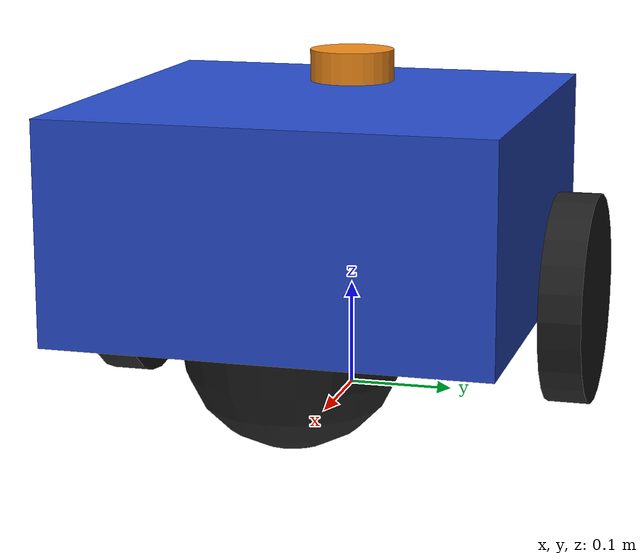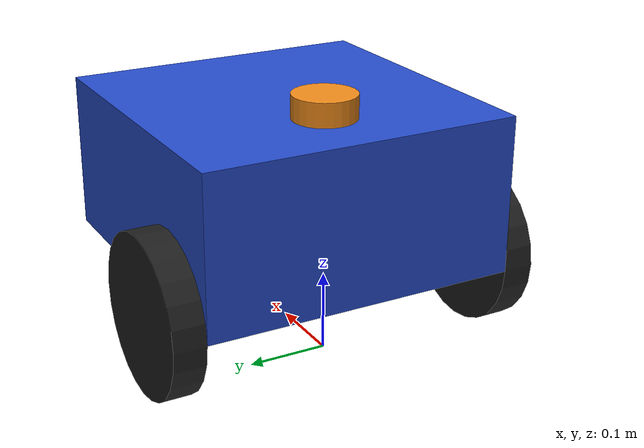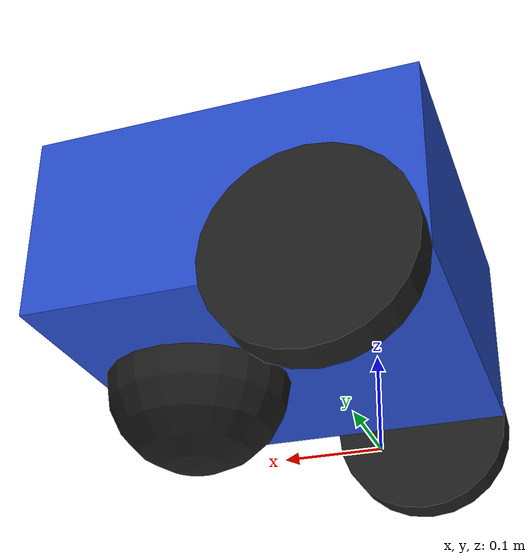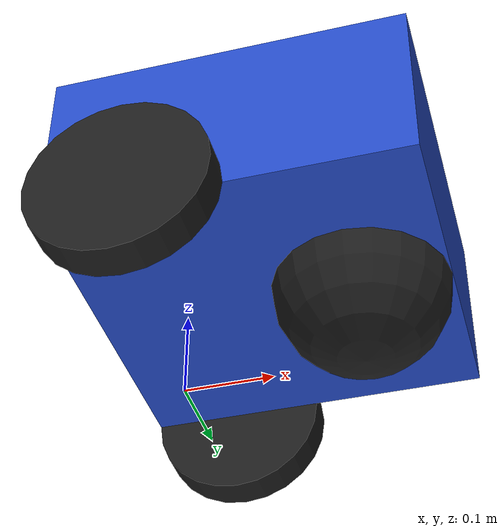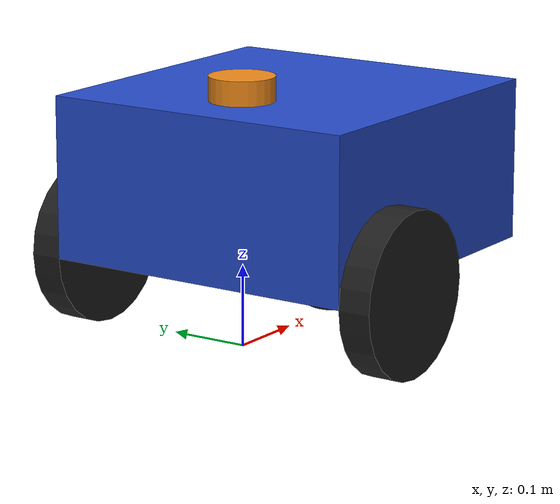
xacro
<?xml version="1.0"?>
<robot name="my_agv" xmlns:xacro="http://www.ros.org/wiki/xacro">

    <xacro:include filename="$(find my_agv)/my_agv_description/urdf/materials.xacro"/>
    <xacro:include filename="$(find my_agv)/my_agv_description/urdf/robot_core.xacro"/>

</robot>

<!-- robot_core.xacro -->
<robot xmlns:xacro="http://www.ros.org/wiki/xacro">

    <!-- BASE_LINK -->
    <link name="base_footprint">
       <origin xyz="0.0 0.0 0.0"/>
    </link>

    <joint name="base_joint" type="fixed">
        <origin xyz="0.0 0.0 0.1"/>
        <parent link="base_footprint"/>
        <child link="base_link"/>
    </joint>

    <link name="base_link">
       <origin xyz="0.0 0.0 0.0"/>
    </link>

    <!-- CHASSIS_LINK -->

    <joint name="chassis_joint" type="fixed">
        <parent link="base_link"/>
        <child link="chassis"/>
        <origin xyz="-0.1 0.0 0.0"/>
    </joint>

    <link name="chassis">
        <inertial>
            <origin xyz="0.2 0.0 0.1" rpy="0.0 0.0 0.0"/>
            <mass value="10.0"/>
            <inertia ixx="0.1" ixy="0.0" ixz="0.0" iyy="0.1" iyz="0.0" izz="0.1"/>
        </inertial>
        <visual>
            <origin xyz="0.2 0.0 0.1" rpy="0.0 0.0 0.0"/>
            <geometry>
                <box size="0.4 0.4 0.2"/>
            </geometry>
            <material name="blue"/>
        </visual>
        <collision>
            <origin xyz="0.2 0.0 0.1" rpy="0.0 0.0 0.0"/>
            <geometry>
                <box size="0.4 0.4 0.2"/>
            </geometry>
        </collision>
    </link>

    <gazebo reference="chassis">
        <material>Gazebo/Blue</material>
    </gazebo>

    <!-- LEFT WHEEL LINK -->
    <joint name="left_wheel_joint" type="continuous">
        <origin xyz="0 0.22 0" rpy="-${pi/2} 0.0 0.0"/>
        <parent link="base_link"/>
        <child link="left_wheel"/>
        <axis xyz="0.0 0.0 1.0"/>
    </joint>

    <link name="left_wheel">
        <visual>
            <origin xyz="0.0 0.0 0.0" rpy="0.0 0.0 0.0"/>
            <geometry>
                <cylinder radius="0.1" length="0.04"/>
            </geometry>
            <material name="black"/>
        </visual>
        <collision>
            <origin xyz="0.0 0.0 0.0" rpy="0.0 0.0 0.0"/>
            <geometry>
                <cylinder radius="0.1" length="0.04"/>
            </geometry>
        </collision>
        <inertial>
            <mass value="0.5"/>
            <inertia ixx="0.1" ixy="0.0" ixz="0.0" iyy="0.1" iyz="0.0" izz="0.1"/>
        </inertial>
    </link>

    <gazebo reference="left_wheel">
        <material>Gazebo/FlatBlack</material>
    </gazebo>

    <!-- RIGHT WHEEL LINK -->
    <joint name="right_wheel_joint" type="continuous">
        <origin xyz="0 -0.22 0" rpy="${pi/2} 0.0 0.0"/>
        <parent link="base_link"/>
        <child link="right_wheel"/>
        <axis xyz="0.0 0.0 -1.0"/>
    </joint>

    <link name="right_wheel">
        <visual>
            <origin xyz="0.0 0.0 0.0" rpy="0.0 0.0 0.0"/>
            <geometry>
                <cylinder radius="0.1" length="0.04"/>
            </geometry>
            <material name="black"/>
        </visual>
        <collision>
            <origin xyz="0.0 0.0 0.0" rpy="0.0 0.0 0.0"/>
            <geometry>
                <cylinder radius="0.1" length="0.04"/>
            </geometry>
        </collision>
        <inertial>
            <mass value="0.5"/>
            <inertia ixx="0.1" ixy="0.0" ixz="0.0" iyy="0.1" iyz="0.0" izz="0.1"/>
        </inertial>
    </link>

    <gazebo reference="right_wheel">
        <material>Gazebo/FlatBlack</material>
    </gazebo>

    <!-- CASTER_WHEEL -->
    <joint name="caster_wheel_joint" type="fixed">
        <parent link="chassis"/>
        <child link="caster_wheel"/>
        <origin xyz="0.3 0.0 0.0"/>         <!--dich 0.3 theo truc x ke tu tam cua chassis-->
    </joint>

    <link name="caster_wheel">
        <visual>
            <geometry>
                <sphere radius="0.1"/>
            </geometry>
            <material name="black"/>
        </visual>
        <collision>
            <geometry>
                <sphere radius="0.1"/>
            </geometry>
        </collision>
        <inertial>
            <mass value="0.2"/>
            <inertia ixx="0.1" ixy="0.0" ixz="0.0" iyy="0.1" iyz="0.0" izz="0.1"/>
        </inertial>

    </link>

    <gazebo reference="caster_wheel">
        <material>Gazebo/FlatBlack</material>
        <mu1 value="0.001"/>
        <mu2 value="0.001"/>
    </gazebo>

    <!-- lidar -->
    <joint name="joint_scan" type="fixed">
        <origin xyz="0.0 0.0 0.215" rpy="0.0 0.0 ${pi}"/>
        <parent link="base_link"/>
        <child link="base_scan"/>
    </joint>

    <link name="base_scan">
        <visual>
            <geometry>
                <cylinder radius="0.04" length="0.03"/>
                <material name="orange"/>
            </geometry>
        </visual>
        <collision>
            <geometry>
                <cylinder radius="0.04" length="0.03"/>
            </geometry>
        </collision>
        <inertial>
            <mass value="0.114"/>
            <inertia ixx="0.01" ixy="0.0" ixz="0.0" iyy="0.01" iyz="0.0" izz="0.01"/>
        </inertial>
    </link>

    <gazebo reference="base_scan">
        <material>Gazebo/Orange</material>
    </gazebo>

    <!-- plugin lidar -->

</robot>
